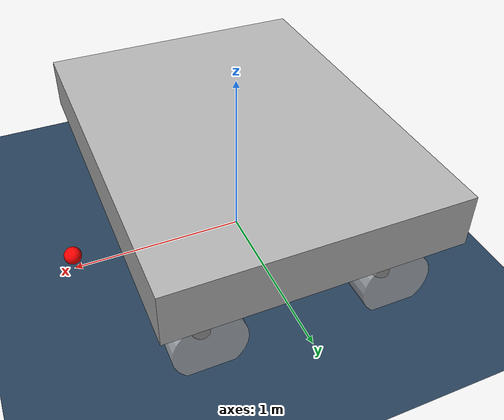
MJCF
<mujoco model="scene">
    <option gravity="0 0 -9.81"/>

    <include file="robot.xml"/>

    <visual>
        <headlight diffuse="0.3 0.3 0.3" ambient="0.2 0.2 0.2" specular="0 0 0" />
        <rgba haze="0.15 0.25 0.35 1" />
        <global azimuth="-120" elevation="-20" />
        <quality shadowsize="0" />
    </visual>

    <asset>
        <texture type="skybox" builtin="gradient" rgb1="0.3 0.5 0.7" rgb2="0 0 0" width="512" height="3072" />
        <texture type="2d" name="groundplane" builtin="checker" mark="edge" rgb1="0.2 0.3 0.4" rgb2="0.1 0.2 0.3"
        markrgb="0.8 0.8 0.8" width="300" height="300" />
        <material name="groundplane" texture="groundplane" texuniform="true" texrepeat="5 5" reflectance="0.0" />
    </asset>

    <worldbody>
        <light pos="0 0 4.5" dir="0 0 -1" directional="true" />
        <light pos="0 -4.5 0.6" dir="0 1 0" directional="true" />

        <geom name="floor" size="25 25 0.05" type="plane" material="groundplane" />
        <geom name="marker" pos="1 0 0.1" size="0.05" type="sphere" rgba="1 0 0 1" />

    </worldbody>
</mujoco>

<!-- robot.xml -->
<mujoco model="robot">
    <asset>
        <material name="aluminum" shininess="0.8" specular="0.8" reflectance="0.8" rgba="0.7 0.7 0.7 1"/>
    </asset>
	<worldbody>
        <body name="chassis" pos="0 0 0.6" euler='0 0 0'>
            <joint type="free"/>
            <geom type="box" size=".8 1.05 .15" material="aluminum" rgba="0.7 0.7 0.7 1" density="2000"/>
            <body name="l-front" pos="0.525 0.78 -0.25" euler='0 0 0'>
                <joint damping="0.1" name="l-front-steer" type="hinge" axis="0 0 1"/>
                <geom type="cylinder" size=".05 0.25" rgba="0 0 0 1"/>
                <body name="l-front-wheel" pos="0 0 -0.2" euler="90 0 0">
                    <joint damping="0.1" name="l-front-wheel" type="hinge" axis="0 0 -1" limited="false"/>
                    <geom type="cylinder" size=".2 0.15" rgba="0.8 0.8 0.8 0.8"/>
                </body>
            </body>
            <body name="r-front" pos="0.525 -0.78 -0.25 " euler='0 0 0'>
                <joint damping="0.1" name="r-front-steer" type="hinge" axis="0 0 1"/>
                <geom type="cylinder" size=".05 0.25" rgba="0 0 0 1"/>
                <body name="r-front-wheel" pos="0.0 0 -0.2" euler="90 0 0">
                    <joint damping="0.1" name="r-front-wheel" type="hinge" axis="0 0 -1" limited="false"/>
                    <geom type="cylinder" size=".2 0.15" rgba="0.8 0.8 0.8 0.8"/>
                </body>
            </body>
            <body name="l-back" pos="-0.525 0.78 -0.25 " euler='0 0 0'>
                <joint damping="0.1" name="l-back-steer" type="hinge" axis="0 0 1"/>
                <geom type="cylinder" size=".05 0.25" rgba="0 0 0 1"/>
                <body name="l-back-wheel" pos="0 0 -0.2" euler="90 0 0">
                    <joint damping="0.1" name="l-back-wheel" type="hinge" axis="0 0 -1" limited="false"/>
                    <geom type="cylinder" size=".2 0.15" rgba="0.8 0.8 0.8 0.8"/>
                </body>
            </body>
            <body name="r-back" pos="-0.525 -0.78 -0.25" euler='0 0 0'>
                <joint damping="0.1" name="r-back-steer" type="hinge" axis="0 0 1"/>
                <geom type="cylinder" size=".05 0.25" rgba="0 0 0 1"/>
                <body name="r-back-wheel" pos="0 0 -0.2" euler="90 0 0">
                    <joint damping="0.1" name="r-back-wheel" type="hinge" axis="0 0 -1" limited="false"/>
                    <geom type="cylinder" size=".2 0.15" rgba="0.8 0.8 0.8 0.8"/>
                </body>
            </body>
        </body>
	</worldbody>
	<actuator>
        <position name="l-front-steer-servo" joint="l-front-steer" ctrlrange="-3.14 3.14" kp="100"/>
        <position name="r-front-steer-servo" joint="r-front-steer" ctrlrange="-3.14 3.14" kp="100"/>
        <position name="l-back-steer-servo" joint="l-back-steer" ctrlrange="-3.14 3.14" kp="100"/>
        <position name="r-back-steer-servo" joint="r-back-steer" ctrlrange="-3.14 3.14" kp="100"/>

        <velocity name="l-front-wheel-servo" joint="l-front-wheel" kv="20"/>
        <velocity name="r-front-wheel-servo" joint="r-front-wheel" kv="20"/>
        <velocity name="l-back-wheel-servo" joint="l-back-wheel" kv="20"/>
        <velocity name="r-back-wheel-servo" joint="r-back-wheel" kv="20"/>
	</actuator>
    <sensor>
        <jointvel name="l-front-wheel-vel" joint="l-front-wheel"/>
        <jointvel name="r-front-wheel-vel" joint="r-front-wheel"/>
        <jointvel name="l-back-wheel-vel" joint="l-back-wheel"/>
        <jointvel name="r-back-wheel-vel" joint="r-back-wheel"/>

        <jointpos name="l-front-steer-pos" joint="l-front-steer"/>
        <jointpos name="r-front-steer-pos" joint="r-front-steer"/>
        <jointpos name="l-back-steer-pos" joint="l-back-steer"/>
        <jointpos name="r-back-steer-pos" joint="r-back-steer"/>
    </sensor>
</mujoco>
